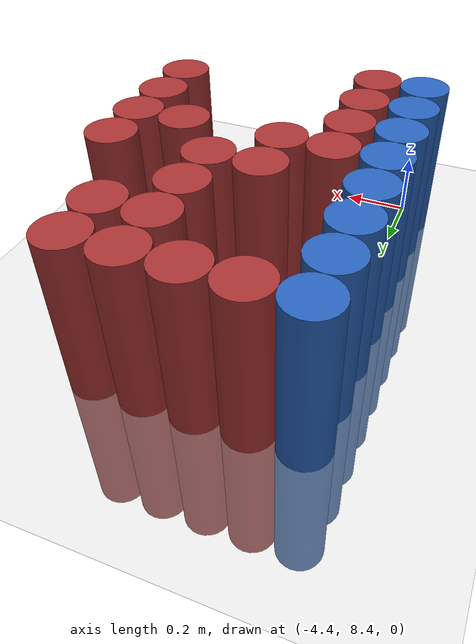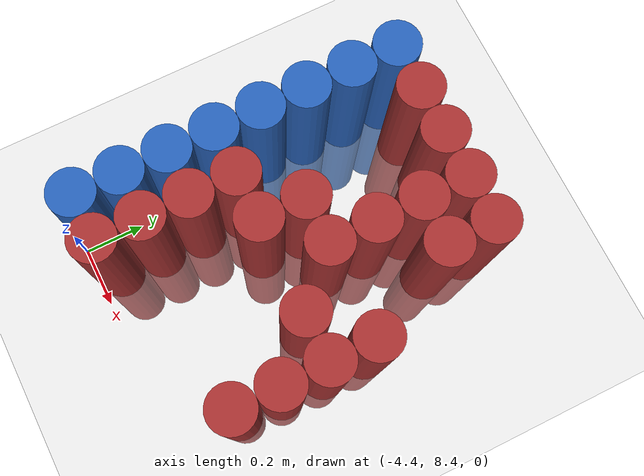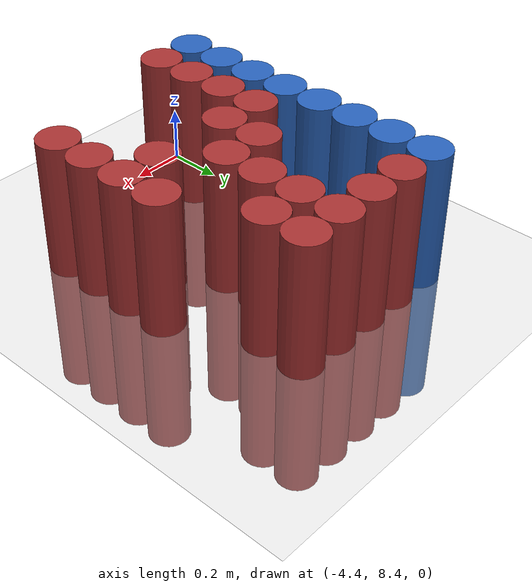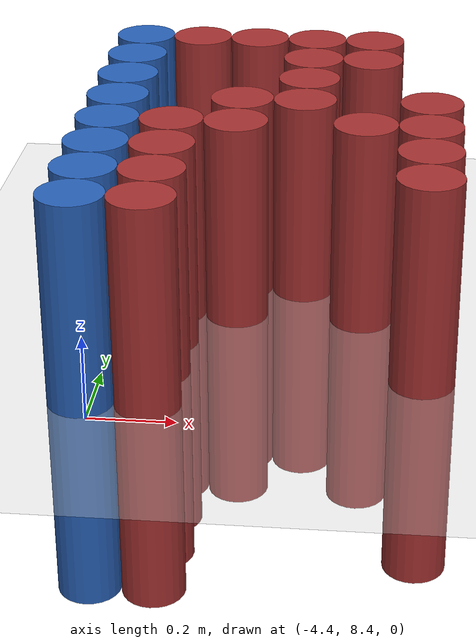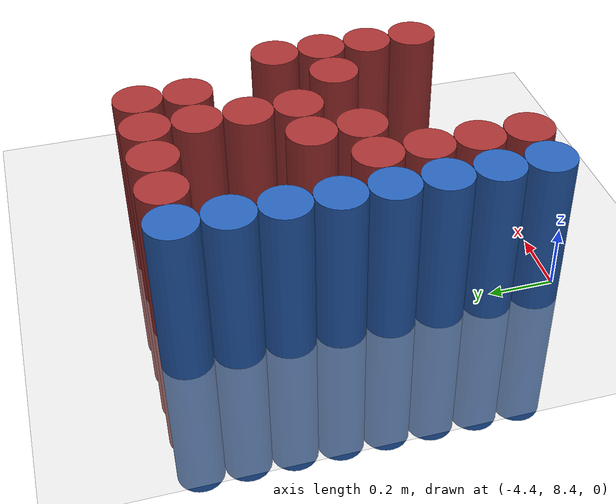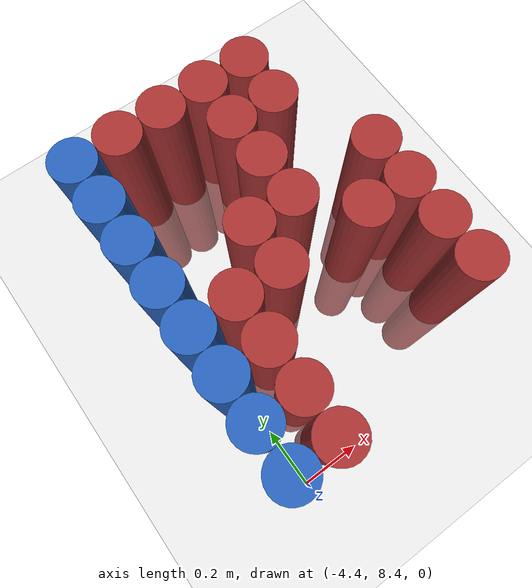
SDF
<sdf version="1.6">
 <world name="default">
  <model name="ground_plane">
   <static>1</static>
   <link name="link">
    <collision name="collision">
     <geometry><plane><normal>0 0 1</normal><size>100 100</size></plane></geometry>
     <surface><friction><ode><mu>100</mu><mu2>50</mu2></ode></friction></surface>
    </collision>
    <visual name="visual">
     <cast_shadows>0</cast_shadows>
     <geometry><plane><normal>0 0 1</normal><size>100 100</size></plane></geometry>
     <material>
      <script><uri>file://media/materials/scripts/gazebo.material</uri><name>Gazebo/Grey</name></script>
     </material>
    </visual>
   </link>
  </model>
  <model name="unit_cylinder_118">
   <static>1</static>
   <pose>-4.425000 8.475000 0.000000 0.000000 0.000000 0.000000</pose>
   <link name="link">
    <inertial>
     <mass>1</mass>
     <inertia><ixx>0.145833</ixx><ixy>0</ixy><ixz>0</ixz><iyy>0.145833</iyy><iyz>0</iyz><izz>0.125</izz></inertia>
    </inertial>
    <collision name="collision">
     <geometry><cylinder><radius>0.075000</radius><length>1</length></cylinder></geometry>
    </collision>
    <visual name="visual">
     <geometry><cylinder><radius>0.075000</radius><length>1</length></cylinder></geometry>
     <material>
      <ambient>0.152000 0.379000 0.720000 1</ambient>
      <diffuse>0.152000 0.379000 0.720000 1</diffuse>
     </material>
     <material>
      <script><name>Gazebo/Grey</name><uri>file://media/materials/scripts/gazebo.material</uri></script>
     </material>
    </visual>
   </link>
  </model>
  <model name="unit_cylinder_119">
   <static>1</static>
   <pose>-4.425000 8.625000 0.000000 0.000000 0.000000 0.000000</pose>
   <link name="link">
    <inertial>
     <mass>1</mass>
     <inertia><ixx>0.145833</ixx><ixy>0</ixy><ixz>0</ixz><iyy>0.145833</iyy><iyz>0</iyz><izz>0.125</izz></inertia>
    </inertial>
    <collision name="collision">
     <geometry><cylinder><radius>0.075000</radius><length>1</length></cylinder></geometry>
    </collision>
    <visual name="visual">
     <geometry><cylinder><radius>0.075000</radius><length>1</length></cylinder></geometry>
     <material>
      <ambient>0.152000 0.379000 0.720000 1</ambient>
      <diffuse>0.152000 0.379000 0.720000 1</diffuse>
     </material>
     <material>
      <script><name>Gazebo/Grey</name><uri>file://media/materials/scripts/gazebo.material</uri></script>
     </material>
    </visual>
   </link>
  </model>
  <model name="unit_cylinder_120">
   <static>1</static>
   <pose>-4.425000 8.775000 0.000000 0.000000 0.000000 0.000000</pose>
   <link name="link">
    <inertial>
     <mass>1</mass>
     <inertia><ixx>0.145833</ixx><ixy>0</ixy><ixz>0</ixz><iyy>0.145833</iyy><iyz>0</iyz><izz>0.125</izz></inertia>
    </inertial>
    <collision name="collision">
     <geometry><cylinder><radius>0.075000</radius><length>1</length></cylinder></geometry>
    </collision>
    <visual name="visual">
     <geometry><cylinder><radius>0.075000</radius><length>1</length></cylinder></geometry>
     <material>
      <ambient>0.152000 0.379000 0.720000 1</ambient>
      <diffuse>0.152000 0.379000 0.720000 1</diffuse>
     </material>
     <material>
      <script><name>Gazebo/Grey</name><uri>file://media/materials/scripts/gazebo.material</uri></script>
     </material>
    </visual>
   </link>
  </model>
  <model name="unit_cylinder_121">
   <static>1</static>
   <pose>-4.425000 8.925000 0.000000 0.000000 0.000000 0.000000</pose>
   <link name="link">
    <inertial>
     <mass>1</mass>
     <inertia><ixx>0.145833</ixx><ixy>0</ixy><ixz>0</ixz><iyy>0.145833</iyy><iyz>0</iyz><izz>0.125</izz></inertia>
    </inertial>
    <collision name="collision">
     <geometry><cylinder><radius>0.075000</radius><length>1</length></cylinder></geometry>
    </collision>
    <visual name="visual">
     <geometry><cylinder><radius>0.075000</radius><length>1</length></cylinder></geometry>
     <material>
      <ambient>0.152000 0.379000 0.720000 1</ambient>
      <diffuse>0.152000 0.379000 0.720000 1</diffuse>
     </material>
     <material>
      <script><name>Gazebo/Grey</name><uri>file://media/materials/scripts/gazebo.material</uri></script>
     </material>
    </visual>
   </link>
  </model>
  <model name="unit_cylinder_122">
   <static>1</static>
   <pose>-4.425000 9.075000 0.000000 0.000000 0.000000 0.000000</pose>
   <link name="link">
    <inertial>
     <mass>1</mass>
     <inertia><ixx>0.145833</ixx><ixy>0</ixy><ixz>0</ixz><iyy>0.145833</iyy><iyz>0</iyz><izz>0.125</izz></inertia>
    </inertial>
    <collision name="collision">
     <geometry><cylinder><radius>0.075000</radius><length>1</length></cylinder></geometry>
    </collision>
    <visual name="visual">
     <geometry><cylinder><radius>0.075000</radius><length>1</length></cylinder></geometry>
     <material>
      <ambient>0.152000 0.379000 0.720000 1</ambient>
      <diffuse>0.152000 0.379000 0.720000 1</diffuse>
     </material>
     <material>
      <script><name>Gazebo/Grey</name><uri>file://media/materials/scripts/gazebo.material</uri></script>
     </material>
    </visual>
   </link>
  </model>
  <model name="unit_cylinder_123">
   <static>1</static>
   <pose>-4.425000 9.225000 0.000000 0.000000 0.000000 0.000000</pose>
   <link name="link">
    <inertial>
     <mass>1</mass>
     <inertia><ixx>0.145833</ixx><ixy>0</ixy><ixz>0</ixz><iyy>0.145833</iyy><iyz>0</iyz><izz>0.125</izz></inertia>
    </inertial>
    <collision name="collision">
     <geometry><cylinder><radius>0.075000</radius><length>1</length></cylinder></geometry>
    </collision>
    <visual name="visual">
     <geometry><cylinder><radius>0.075000</radius><length>1</length></cylinder></geometry>
     <material>
      <ambient>0.152000 0.379000 0.720000 1</ambient>
      <diffuse>0.152000 0.379000 0.720000 1</diffuse>
     </material>
     <material>
      <script><name>Gazebo/Grey</name><uri>file://media/materials/scripts/gazebo.material</uri></script>
     </material>
    </visual>
   </link>
  </model>
  <model name="unit_cylinder_124">
   <static>1</static>
   <pose>-4.425000 9.375000 0.000000 0.000000 0.000000 0.000000</pose>
   <link name="link">
    <inertial>
     <mass>1</mass>
     <inertia><ixx>0.145833</ixx><ixy>0</ixy><ixz>0</ixz><iyy>0.145833</iyy><iyz>0</iyz><izz>0.125</izz></inertia>
    </inertial>
    <collision name="collision">
     <geometry><cylinder><radius>0.075000</radius><length>1</length></cylinder></geometry>
    </collision>
    <visual name="visual">
     <geometry><cylinder><radius>0.075000</radius><length>1</length></cylinder></geometry>
     <material>
      <ambient>0.152000 0.379000 0.720000 1</ambient>
      <diffuse>0.152000 0.379000 0.720000 1</diffuse>
     </material>
     <material>
      <script><name>Gazebo/Grey</name><uri>file://media/materials/scripts/gazebo.material</uri></script>
     </material>
    </visual>
   </link>
  </model>
  <model name="unit_cylinder_125">
   <static>1</static>
   <pose>-4.425000 9.525000 0.000000 0.000000 0.000000 0.000000</pose>
   <link name="link">
    <inertial>
     <mass>1</mass>
     <inertia><ixx>0.145833</ixx><ixy>0</ixy><ixz>0</ixz><iyy>0.145833</iyy><iyz>0</iyz><izz>0.125</izz></inertia>
    </inertial>
    <collision name="collision">
     <geometry><cylinder><radius>0.075000</radius><length>1</length></cylinder></geometry>
    </collision>
    <visual name="visual">
     <geometry><cylinder><radius>0.075000</radius><length>1</length></cylinder></geometry>
     <material>
      <ambient>0.152000 0.379000 0.720000 1</ambient>
      <diffuse>0.152000 0.379000 0.720000 1</diffuse>
     </material>
     <material>
      <script><name>Gazebo/Grey</name><uri>file://media/materials/scripts/gazebo.material</uri></script>
     </material>
    </visual>
   </link>
  </model>
  <model name="unit_cylinder_140">
   <static>1</static>
   <pose>-4.275000 8.475000 0.000000 0.000000 0.000000 0.000000</pose>
   <link name="link">
    <inertial>
     <mass>1</mass>
     <inertia><ixx>0.145833</ixx><ixy>0</ixy><ixz>0</ixz><iyy>0.145833</iyy><iyz>0</iyz><izz>0.125</izz></inertia>
    </inertial>
    <collision name="collision">
     <geometry><cylinder><radius>0.075000</radius><length>1</length></cylinder></geometry>
    </collision>
    <visual name="visual">
     <geometry><cylinder><radius>0.075000</radius><length>1</length></cylinder></geometry>
     <material>
      <ambient>0.648000 0.192000 0.192000 1</ambient>
      <diffuse>0.648000 0.192000 0.192000 1</diffuse>
     </material>
     <material>
      <script><name>Gazebo/Grey</name><uri>file://media/materials/scripts/gazebo.material</uri></script>
     </material>
    </visual>
   </link>
  </model>
  <model name="unit_cylinder_141">
   <static>1</static>
   <pose>-4.275000 8.625000 0.000000 0.000000 0.000000 0.000000</pose>
   <link name="link">
    <inertial>
     <mass>1</mass>
     <inertia><ixx>0.145833</ixx><ixy>0</ixy><ixz>0</ixz><iyy>0.145833</iyy><iyz>0</iyz><izz>0.125</izz></inertia>
    </inertial>
    <collision name="collision">
     <geometry><cylinder><radius>0.075000</radius><length>1</length></cylinder></geometry>
    </collision>
    <visual name="visual">
     <geometry><cylinder><radius>0.075000</radius><length>1</length></cylinder></geometry>
     <material>
      <ambient>0.648000 0.192000 0.192000 1</ambient>
      <diffuse>0.648000 0.192000 0.192000 1</diffuse>
     </material>
     <material>
      <script><name>Gazebo/Grey</name><uri>file://media/materials/scripts/gazebo.material</uri></script>
     </material>
    </visual>
   </link>
  </model>
  <model name="unit_cylinder_142">
   <static>1</static>
   <pose>-4.275000 8.775000 0.000000 0.000000 0.000000 0.000000</pose>
   <link name="link">
    <inertial>
     <mass>1</mass>
     <inertia><ixx>0.145833</ixx><ixy>0</ixy><ixz>0</ixz><iyy>0.145833</iyy><iyz>0</iyz><izz>0.125</izz></inertia>
    </inertial>
    <collision name="collision">
     <geometry><cylinder><radius>0.075000</radius><length>1</length></cylinder></geometry>
    </collision>
    <visual name="visual">
     <geometry><cylinder><radius>0.075000</radius><length>1</length></cylinder></geometry>
     <material>
      <ambient>0.648000 0.192000 0.192000 1</ambient>
      <diffuse>0.648000 0.192000 0.192000 1</diffuse>
     </material>
     <material>
      <script><name>Gazebo/Grey</name><uri>file://media/materials/scripts/gazebo.material</uri></script>
     </material>
    </visual>
   </link>
  </model>
  <model name="unit_cylinder_143">
   <static>1</static>
   <pose>-4.275000 8.925000 0.000000 0.000000 0.000000 0.000000</pose>
   <link name="link">
    <inertial>
     <mass>1</mass>
     <inertia><ixx>0.145833</ixx><ixy>0</ixy><ixz>0</ixz><iyy>0.145833</iyy><iyz>0</iyz><izz>0.125</izz></inertia>
    </inertial>
    <collision name="collision">
     <geometry><cylinder><radius>0.075000</radius><length>1</length></cylinder></geometry>
    </collision>
    <visual name="visual">
     <geometry><cylinder><radius>0.075000</radius><length>1</length></cylinder></geometry>
     <material>
      <ambient>0.648000 0.192000 0.192000 1</ambient>
      <diffuse>0.648000 0.192000 0.192000 1</diffuse>
     </material>
     <material>
      <script><name>Gazebo/Grey</name><uri>file://media/materials/scripts/gazebo.material</uri></script>
     </material>
    </visual>
   </link>
  </model>
  <model name="unit_cylinder_144">
   <static>1</static>
   <pose>-4.275000 9.525000 0.000000 0.000000 0.000000 0.000000</pose>
   <link name="link">
    <inertial>
     <mass>1</mass>
     <inertia><ixx>0.145833</ixx><ixy>0</ixy><ixz>0</ixz><iyy>0.145833</iyy><iyz>0</iyz><izz>0.125</izz></inertia>
    </inertial>
    <collision name="collision">
     <geometry><cylinder><radius>0.075000</radius><length>1</length></cylinder></geometry>
    </collision>
    <visual name="visual">
     <geometry><cylinder><radius>0.075000</radius><length>1</length></cylinder></geometry>
     <material>
      <ambient>0.648000 0.192000 0.192000 1</ambient>
      <diffuse>0.648000 0.192000 0.192000 1</diffuse>
     </material>
     <material>
      <script><name>Gazebo/Grey</name><uri>file://media/materials/scripts/gazebo.material</uri></script>
     </material>
    </visual>
   </link>
  </model>
  <model name="unit_cylinder_149">
   <static>1</static>
   <pose>-4.125000 8.925000 0.000000 0.000000 0.000000 0.000000</pose>
   <link name="link">
    <inertial>
     <mass>1</mass>
     <inertia><ixx>0.145833</ixx><ixy>0</ixy><ixz>0</ixz><iyy>0.145833</iyy><iyz>0</iyz><izz>0.125</izz></inertia>
    </inertial>
    <collision name="collision">
     <geometry><cylinder><radius>0.075000</radius><length>1</length></cylinder></geometry>
    </collision>
    <visual name="visual">
     <geometry><cylinder><radius>0.075000</radius><length>1</length></cylinder></geometry>
     <material>
      <ambient>0.648000 0.192000 0.192000 1</ambient>
      <diffuse>0.648000 0.192000 0.192000 1</diffuse>
     </material>
     <material>
      <script><name>Gazebo/Grey</name><uri>file://media/materials/scripts/gazebo.material</uri></script>
     </material>
    </visual>
   </link>
  </model>
  <model name="unit_cylinder_150">
   <static>1</static>
   <pose>-4.125000 9.075000 0.000000 0.000000 0.000000 0.000000</pose>
   <link name="link">
    <inertial>
     <mass>1</mass>
     <inertia><ixx>0.145833</ixx><ixy>0</ixy><ixz>0</ixz><iyy>0.145833</iyy><iyz>0</iyz><izz>0.125</izz></inertia>
    </inertial>
    <collision name="collision">
     <geometry><cylinder><radius>0.075000</radius><length>1</length></cylinder></geometry>
    </collision>
    <visual name="visual">
     <geometry><cylinder><radius>0.075000</radius><length>1</length></cylinder></geometry>
     <material>
      <ambient>0.648000 0.192000 0.192000 1</ambient>
      <diffuse>0.648000 0.192000 0.192000 1</diffuse>
     </material>
     <material>
      <script><name>Gazebo/Grey</name><uri>file://media/materials/scripts/gazebo.material</uri></script>
     </material>
    </visual>
   </link>
  </model>
  <model name="unit_cylinder_151">
   <static>1</static>
   <pose>-4.125000 9.525000 0.000000 0.000000 0.000000 0.000000</pose>
   <link name="link">
    <inertial>
     <mass>1</mass>
     <inertia><ixx>0.145833</ixx><ixy>0</ixy><ixz>0</ixz><iyy>0.145833</iyy><iyz>0</iyz><izz>0.125</izz></inertia>
    </inertial>
    <collision name="collision">
     <geometry><cylinder><radius>0.075000</radius><length>1</length></cylinder></geometry>
    </collision>
    <visual name="visual">
     <geometry><cylinder><radius>0.075000</radius><length>1</length></cylinder></geometry>
     <material>
      <ambient>0.648000 0.192000 0.192000 1</ambient>
      <diffuse>0.648000 0.192000 0.192000 1</diffuse>
     </material>
     <material>
      <script><name>Gazebo/Grey</name><uri>file://media/materials/scripts/gazebo.material</uri></script>
     </material>
    </visual>
   </link>
  </model>
  <model name="unit_cylinder_154">
   <static>1</static>
   <pose>-3.975000 9.075000 0.000000 0.000000 0.000000 0.000000</pose>
   <link name="link">
    <inertial>
     <mass>1</mass>
     <inertia><ixx>0.145833</ixx><ixy>0</ixy><ixz>0</ixz><iyy>0.145833</iyy><iyz>0</iyz><izz>0.125</izz></inertia>
    </inertial>
    <collision name="collision">
     <geometry><cylinder><radius>0.075000</radius><length>1</length></cylinder></geometry>
    </collision>
    <visual name="visual">
     <geometry><cylinder><radius>0.075000</radius><length>1</length></cylinder></geometry>
     <material>
      <ambient>0.648000 0.192000 0.192000 1</ambient>
      <diffuse>0.648000 0.192000 0.192000 1</diffuse>
     </material>
     <material>
      <script><name>Gazebo/Grey</name><uri>file://media/materials/scripts/gazebo.material</uri></script>
     </material>
    </visual>
   </link>
  </model>
  <model name="unit_cylinder_155">
   <static>1</static>
   <pose>-3.975000 9.225000 0.000000 0.000000 0.000000 0.000000</pose>
   <link name="link">
    <inertial>
     <mass>1</mass>
     <inertia><ixx>0.145833</ixx><ixy>0</ixy><ixz>0</ixz><iyy>0.145833</iyy><iyz>0</iyz><izz>0.125</izz></inertia>
    </inertial>
    <collision name="collision">
     <geometry><cylinder><radius>0.075000</radius><length>1</length></cylinder></geometry>
    </collision>
    <visual name="visual">
     <geometry><cylinder><radius>0.075000</radius><length>1</length></cylinder></geometry>
     <material>
      <ambient>0.648000 0.192000 0.192000 1</ambient>
      <diffuse>0.648000 0.192000 0.192000 1</diffuse>
     </material>
     <material>
      <script><name>Gazebo/Grey</name><uri>file://media/materials/scripts/gazebo.material</uri></script>
     </material>
    </visual>
   </link>
  </model>
  <model name="unit_cylinder_156">
   <static>1</static>
   <pose>-3.975000 9.375000 0.000000 0.000000 0.000000 0.000000</pose>
   <link name="link">
    <inertial>
     <mass>1</mass>
     <inertia><ixx>0.145833</ixx><ixy>0</ixy><ixz>0</ixz><iyy>0.145833</iyy><iyz>0</iyz><izz>0.125</izz></inertia>
    </inertial>
    <collision name="collision">
     <geometry><cylinder><radius>0.075000</radius><length>1</length></cylinder></geometry>
    </collision>
    <visual name="visual">
     <geometry><cylinder><radius>0.075000</radius><length>1</length></cylinder></geometry>
     <material>
      <ambient>0.648000 0.192000 0.192000 1</ambient>
      <diffuse>0.648000 0.192000 0.192000 1</diffuse>
     </material>
     <material>
      <script><name>Gazebo/Grey</name><uri>file://media/materials/scripts/gazebo.material</uri></script>
     </material>
    </visual>
   </link>
  </model>
  <model name="unit_cylinder_157">
   <static>1</static>
   <pose>-3.975000 9.525000 0.000000 0.000000 0.000000 0.000000</pose>
   <link name="link">
    <inertial>
     <mass>1</mass>
     <inertia><ixx>0.145833</ixx><ixy>0</ixy><ixz>0</ixz><iyy>0.145833</iyy><iyz>0</iyz><izz>0.125</izz></inertia>
    </inertial>
    <collision name="collision">
     <geometry><cylinder><radius>0.075000</radius><length>1</length></cylinder></geometry>
    </collision>
    <visual name="visual">
     <geometry><cylinder><radius>0.075000</radius><length>1</length></cylinder></geometry>
     <material>
      <ambient>0.648000 0.192000 0.192000 1</ambient>
      <diffuse>0.648000 0.192000 0.192000 1</diffuse>
     </material>
     <material>
      <script><name>Gazebo/Grey</name><uri>file://media/materials/scripts/gazebo.material</uri></script>
     </material>
    </visual>
   </link>
  </model>
  <model name="unit_cylinder_161">
   <static>1</static>
   <pose>-3.825000 8.925000 0.000000 0.000000 0.000000 0.000000</pose>
   <link name="link">
    <inertial>
     <mass>1</mass>
     <inertia><ixx>0.145833</ixx><ixy>0</ixy><ixz>0</ixz><iyy>0.145833</iyy><iyz>0</iyz><izz>0.125</izz></inertia>
    </inertial>
    <collision name="collision">
     <geometry><cylinder><radius>0.075000</radius><length>1</length></cylinder></geometry>
    </collision>
    <visual name="visual">
     <geometry><cylinder><radius>0.075000</radius><length>1</length></cylinder></geometry>
     <material>
      <ambient>0.648000 0.192000 0.192000 1</ambient>
      <diffuse>0.648000 0.192000 0.192000 1</diffuse>
     </material>
     <material>
      <script><name>Gazebo/Grey</name><uri>file://media/materials/scripts/gazebo.material</uri></script>
     </material>
    </visual>
   </link>
  </model>
  <model name="unit_cylinder_162">
   <static>1</static>
   <pose>-3.825000 9.375000 0.000000 0.000000 0.000000 0.000000</pose>
   <link name="link">
    <inertial>
     <mass>1</mass>
     <inertia><ixx>0.145833</ixx><ixy>0</ixy><ixz>0</ixz><iyy>0.145833</iyy><iyz>0</iyz><izz>0.125</izz></inertia>
    </inertial>
    <collision name="collision">
     <geometry><cylinder><radius>0.075000</radius><length>1</length></cylinder></geometry>
    </collision>
    <visual name="visual">
     <geometry><cylinder><radius>0.075000</radius><length>1</length></cylinder></geometry>
     <material>
      <ambient>0.648000 0.192000 0.192000 1</ambient>
      <diffuse>0.648000 0.192000 0.192000 1</diffuse>
     </material>
     <material>
      <script><name>Gazebo/Grey</name><uri>file://media/materials/scripts/gazebo.material</uri></script>
     </material>
    </visual>
   </link>
  </model>
  <model name="unit_cylinder_163">
   <static>1</static>
   <pose>-3.825000 9.525000 0.000000 0.000000 0.000000 0.000000</pose>
   <link name="link">
    <inertial>
     <mass>1</mass>
     <inertia><ixx>0.145833</ixx><ixy>0</ixy><ixz>0</ixz><iyy>0.145833</iyy><iyz>0</iyz><izz>0.125</izz></inertia>
    </inertial>
    <collision name="collision">
     <geometry><cylinder><radius>0.075000</radius><length>1</length></cylinder></geometry>
    </collision>
    <visual name="visual">
     <geometry><cylinder><radius>0.075000</radius><length>1</length></cylinder></geometry>
     <material>
      <ambient>0.648000 0.192000 0.192000 1</ambient>
      <diffuse>0.648000 0.192000 0.192000 1</diffuse>
     </material>
     <material>
      <script><name>Gazebo/Grey</name><uri>file://media/materials/scripts/gazebo.material</uri></script>
     </material>
    </visual>
   </link>
  </model>
  <model name="unit_cylinder_167">
   <static>1</static>
   <pose>-3.675000 8.625000 0.000000 0.000000 0.000000 0.000000</pose>
   <link name="link">
    <inertial>
     <mass>1</mass>
     <inertia><ixx>0.145833</ixx><ixy>0</ixy><ixz>0</ixz><iyy>0.145833</iyy><iyz>0</iyz><izz>0.125</izz></inertia>
    </inertial>
    <collision name="collision">
     <geometry><cylinder><radius>0.075000</radius><length>1</length></cylinder></geometry>
    </collision>
    <visual name="visual">
     <geometry><cylinder><radius>0.075000</radius><length>1</length></cylinder></geometry>
     <material>
      <ambient>0.648000 0.192000 0.192000 1</ambient>
      <diffuse>0.648000 0.192000 0.192000 1</diffuse>
     </material>
     <material>
      <script><name>Gazebo/Grey</name><uri>file://media/materials/scripts/gazebo.material</uri></script>
     </material>
    </visual>
   </link>
  </model>
  <model name="unit_cylinder_168">
   <static>1</static>
   <pose>-3.675000 8.775000 0.000000 0.000000 0.000000 0.000000</pose>
   <link name="link">
    <inertial>
     <mass>1</mass>
     <inertia><ixx>0.145833</ixx><ixy>0</ixy><ixz>0</ixz><iyy>0.145833</iyy><iyz>0</iyz><izz>0.125</izz></inertia>
    </inertial>
    <collision name="collision">
     <geometry><cylinder><radius>0.075000</radius><length>1</length></cylinder></geometry>
    </collision>
    <visual name="visual">
     <geometry><cylinder><radius>0.075000</radius><length>1</length></cylinder></geometry>
     <material>
      <ambient>0.648000 0.192000 0.192000 1</ambient>
      <diffuse>0.648000 0.192000 0.192000 1</diffuse>
     </material>
     <material>
      <script><name>Gazebo/Grey</name><uri>file://media/materials/scripts/gazebo.material</uri></script>
     </material>
    </visual>
   </link>
  </model>
  <model name="unit_cylinder_169">
   <static>1</static>
   <pose>-3.675000 8.925000 0.000000 0.000000 0.000000 0.000000</pose>
   <link name="link">
    <inertial>
     <mass>1</mass>
     <inertia><ixx>0.145833</ixx><ixy>0</ixy><ixz>0</ixz><iyy>0.145833</iyy><iyz>0</iyz><izz>0.125</izz></inertia>
    </inertial>
    <collision name="collision">
     <geometry><cylinder><radius>0.075000</radius><length>1</length></cylinder></geometry>
    </collision>
    <visual name="visual">
     <geometry><cylinder><radius>0.075000</radius><length>1</length></cylinder></geometry>
     <material>
      <ambient>0.648000 0.192000 0.192000 1</ambient>
      <diffuse>0.648000 0.192000 0.192000 1</diffuse>
     </material>
     <material>
      <script><name>Gazebo/Grey</name><uri>file://media/materials/scripts/gazebo.material</uri></script>
     </material>
    </visual>
   </link>
  </model>
  <model name="unit_cylinder_170">
   <static>1</static>
   <pose>-3.675000 9.075000 0.000000 0.000000 0.000000 0.000000</pose>
   <link name="link">
    <inertial>
     <mass>1</mass>
     <inertia><ixx>0.145833</ixx><ixy>0</ixy><ixz>0</ixz><iyy>0.145833</iyy><iyz>0</iyz><izz>0.125</izz></inertia>
    </inertial>
    <collision name="collision">
     <geometry><cylinder><radius>0.075000</radius><length>1</length></cylinder></geometry>
    </collision>
    <visual name="visual">
     <geometry><cylinder><radius>0.075000</radius><length>1</length></cylinder></geometry>
     <material>
      <ambient>0.648000 0.192000 0.192000 1</ambient>
      <diffuse>0.648000 0.192000 0.192000 1</diffuse>
     </material>
     <material>
      <script><name>Gazebo/Grey</name><uri>file://media/materials/scripts/gazebo.material</uri></script>
     </material>
    </visual>
   </link>
  </model>
 </world>
</sdf>
